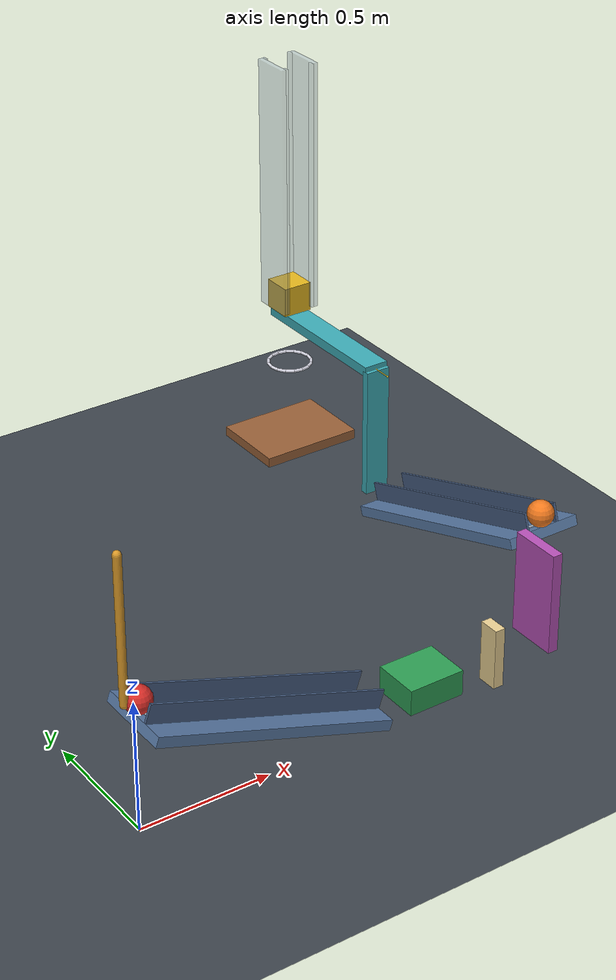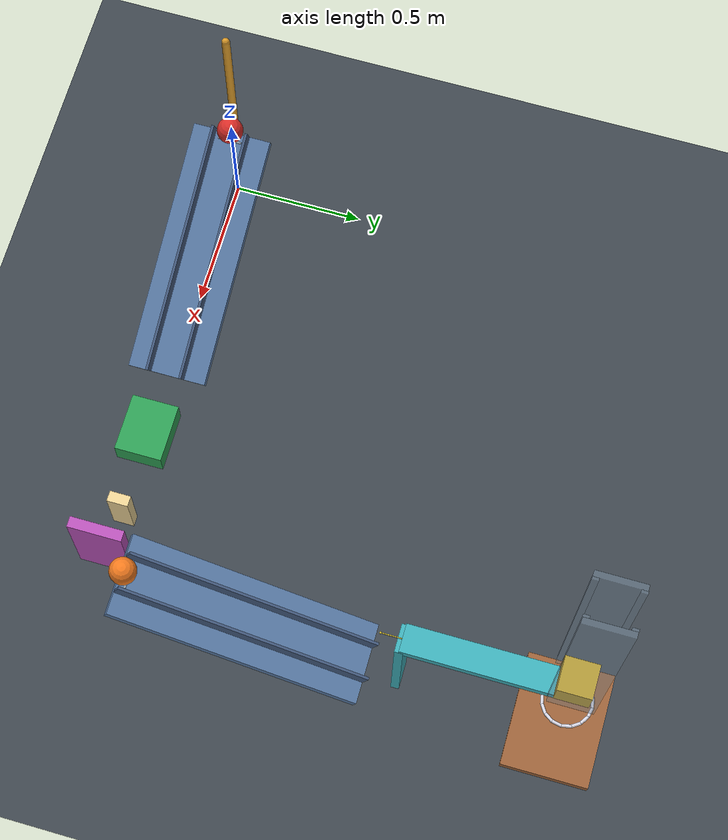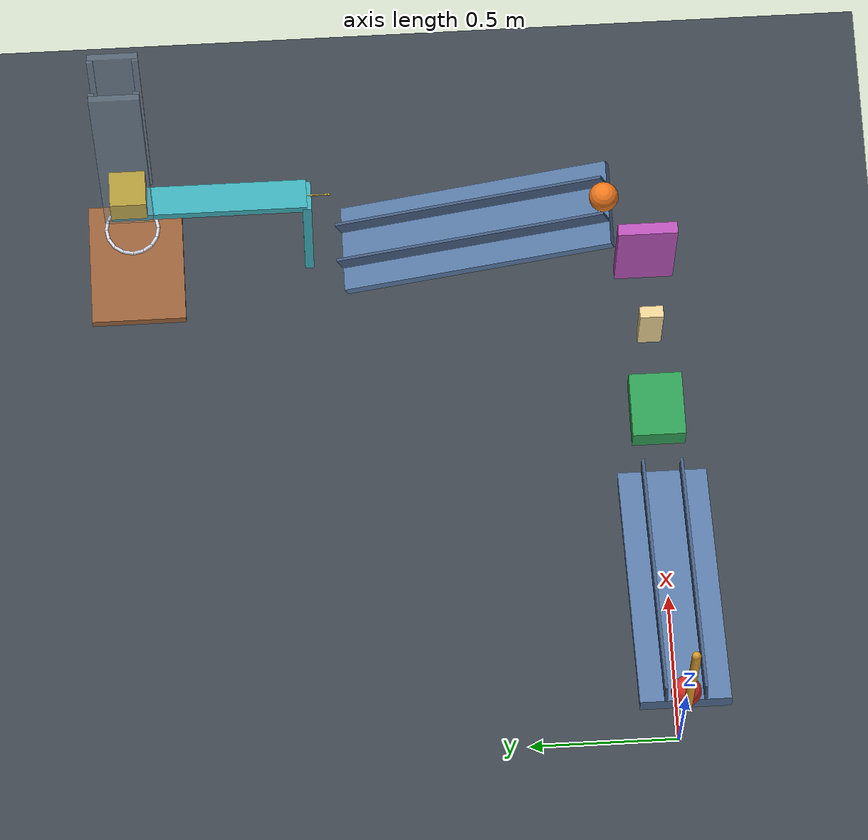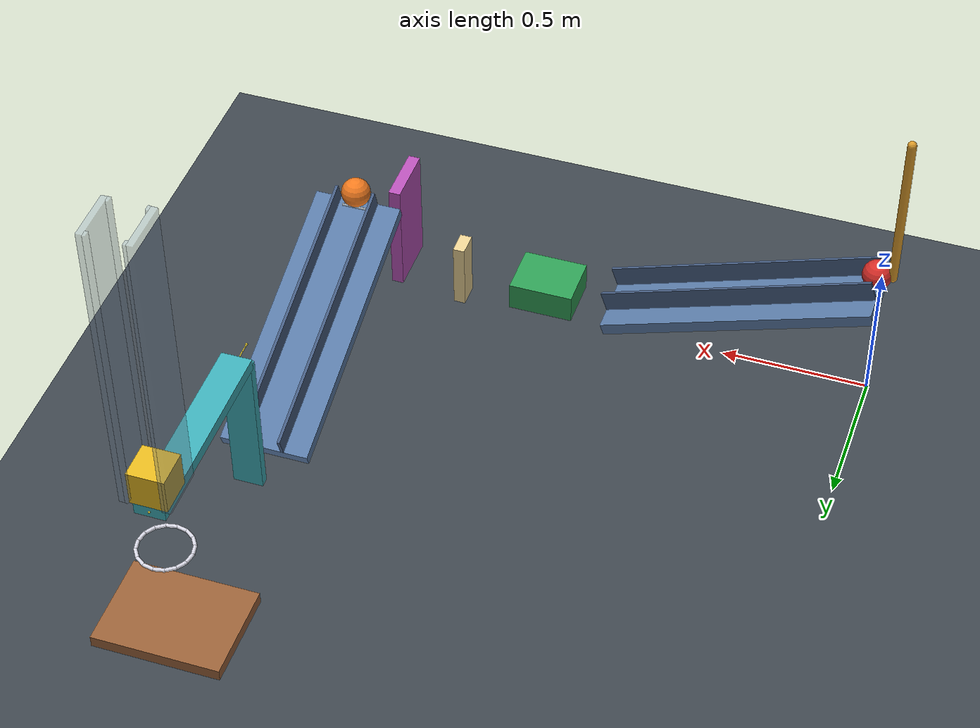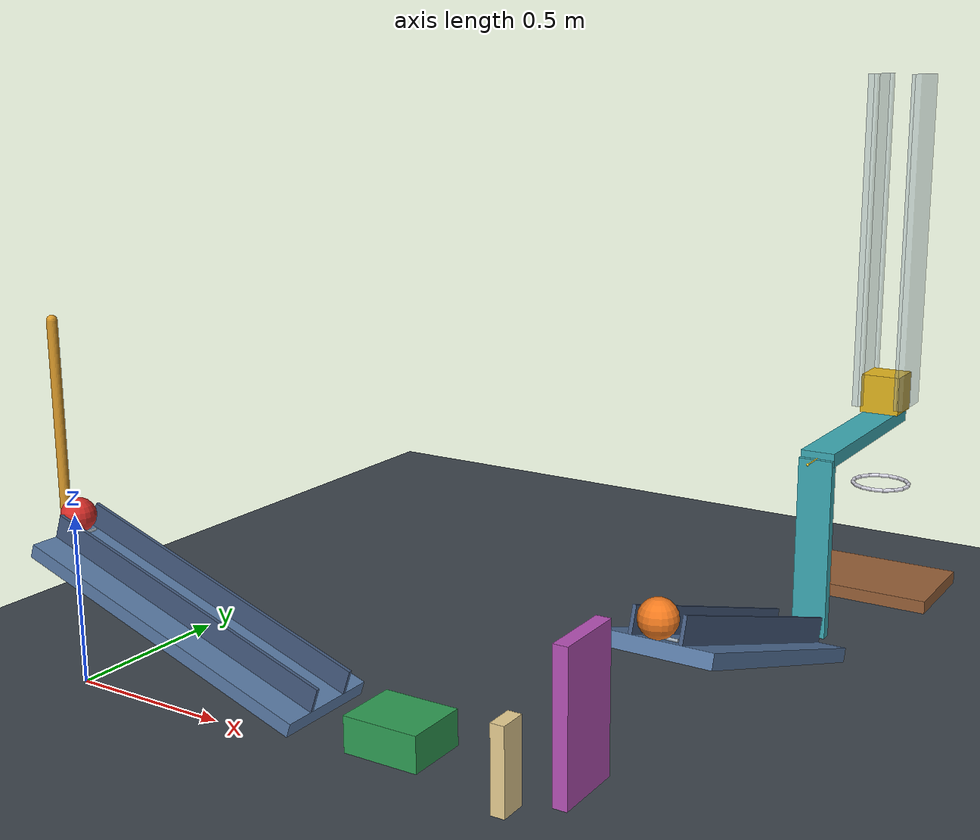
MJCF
<mujoco model="passive_chain_with_ring_clearance_conflict">
  <compiler angle="degree" autolimits="true"/>
  <option timestep="0.002" gravity="0 0 -9.81" integrator="implicitfast" solver="Newton" iterations="100" tolerance="1e-9"/>
  <size nconmax="500" njmax="2000"/>

  <!-- No prescribed motion or powered actuators. The start keyframe has zero velocity. -->
  <!-- MuJoCo has no restitution coefficient attribute. The solref damping ratio below -->
  <!-- approximates e = 0.05 for an isolated linear normal impact; actual contacts vary. -->
  <!-- Sliding friction is 0.68. Small torsional and rolling friction help balls settle. -->
  <!-- The elevated seesaw has a downward-reaching striking paddle at its left end. -->
  <!-- A passive over-center tendon spring supplies the launcher's stored energy. -->
  <!-- Vertical corner guides keep the block above the ring without restraining z. -->
  <!-- The 0.16 m circular aperture remains too small for the specified rigid cube. -->

  <visual>
    <headlight ambient="0.35 0.35 0.35" diffuse="0.65 0.65 0.65" specular="0.2 0.2 0.2"/>
    <map znear="0.01" zfar="30"/>
  </visual>

  <worldbody>
    <light name="main_light" pos="0 -2 5" dir="0 0 -1" directional="true"/>
    <camera name="overview" pos="3.8 -4.8 3.1" xyaxes="0.85 0.53 0 -0.24 0.39 0.89"/>

    <geom name="floor" type="plane" size="8 8 0.1" pos="0 0 0" friction="0.68 0.005 0.005" condim="6" solref="0.006 0.6901" solimp="0.95 0.99 0.001" rgba="0.24 0.27 0.30 1"/>

    <body name="pendulum1" pos="-0.034 0 1.056565">
      <joint name="pendulum1_hinge" type="hinge" axis="0 1 0" range="-100 65" damping="0.04"/>
      <geom name="pendulum1_rod" type="capsule" fromto="0 0 0 0 0 -0.55" size="0.015" mass="0.40" friction="0.68 0.005 0.005" condim="6" solref="0.006 0.6901" solimp="0.95 0.99 0.001" rgba="0.85 0.60 0.16 1"/>
    </body>

    <body name="ball1" pos="0.0162784 0 0.506565">
      <freejoint name="ball1_free"/>
      <geom name="ball1_sphere" type="sphere" size="0.05" mass="0.20" friction="0.68 0.005 0.005" condim="6" solref="0.006 0.6901" solimp="0.95 0.99 0.001" rgba="0.85 0.18 0.16 1"/>
    </body>

    <!-- The ramp's top face has length 0.95 m and width 0.30 m. -->
    <!-- Its downhill top edge is at z = 0.15 m. -->
    <body name="ramp1" pos="0.442609 0 0.285734" quat="0.986285602 0 0.165047606 0">
      <geom name="ramp1_surface" type="box" size="0.475 0.15 0.02" density="0" friction="0.68 0.005 0.005" condim="6" solref="0.006 0.6901" solimp="0.95 0.99 0.001" rgba="0.35 0.48 0.65 1"/>
      <geom name="ramp1_rail_left" type="box" pos="0 -0.065 0.055" size="0.475 0.005 0.035" density="0" friction="0.68 0.005 0.005" condim="6" solref="0.006 0.6901" solimp="0.95 0.99 0.001" rgba="0.27 0.36 0.50 1"/>
      <geom name="ramp1_rail_right" type="box" pos="0 0.065 0.055" size="0.475 0.005 0.035" density="0" friction="0.68 0.005 0.005" condim="6" solref="0.006 0.6901" solimp="0.95 0.99 0.001" rgba="0.27 0.36 0.50 1"/>
      <geom name="ramp1_release_lip" type="cylinder" pos="-0.4437 0 0.026" quat="0.707106781 0.707106781 0 0" size="0.004 0.045" density="0" friction="0.68 0.005 0.005" condim="6" solref="0.006 0.6901" solimp="0.95 0.99 0.001" rgba="0.65 0.70 0.75 1"/>
    </body>

    <!-- Ramp1 downhill edge x = 0.898242; cart's initial left face x = 1.018242. -->
    <body name="cart1" pos="1.128242 0 0.13">
      <joint name="cart1_slide" type="slide" axis="1 0 0" range="0 0.40" damping="0.20"/>
      <geom name="cart1_box" type="box" size="0.11 0.09 0.05" mass="0.50" friction="0.68 0.005 0.005" condim="6" solref="0.006 0.6901" solimp="0.95 0.99 0.001" rgba="0.18 0.62 0.33 1"/>
    </body>

    <body name="domino1" pos="1.438242 0 0.12">
      <freejoint name="domino1_free"/>
      <geom name="domino1_box" type="box" size="0.02 0.04 0.12" mass="0.25" friction="0.68 0.005 0.005" condim="6" solref="0.006 0.6901" solimp="0.95 0.99 0.001" rgba="0.92 0.82 0.58 1"/>
    </body>

    <!-- Flap's initial near face is 0.18 m beyond the domino's initial center. -->
    <!-- A very small stop preload prevents an untriggered fall from perfect upright. -->
    <body name="flap1" pos="1.638242 0.01 0.10">
      <joint name="flap1_hinge" type="hinge" axis="0 1 0" range="0 65" damping="0.04" stiffness="0.01" springref="-2" solreflimit="0.004 1" solimplimit="0.99 0.999 0.0001"/>
      <geom name="flap1_panel" type="box" pos="0 0 0.20" size="0.02 0.10 0.20" mass="0.30" friction="0.68 0.005 0.005" condim="6" solref="0.006 0.6901" solimp="0.95 0.99 0.001" rgba="0.72 0.32 0.72 1"/>
    </body>

    <body name="ball2" pos="1.758242 0.1512784 0.506565">
      <freejoint name="ball2_free"/>
      <geom name="ball2_sphere" type="sphere" size="0.05" mass="0.20" friction="0.68 0.005 0.005" condim="6" solref="0.006 0.6901" solimp="0.95 0.99 0.001" rgba="0.95 0.48 0.12 1"/>
    </body>

    <!-- Ramp2 runs along +y, allowing the flap to strike around its uphill corner. -->
    <!-- Its top high edge is y = 0.135; its top low edge is y = 1.033242. -->
    <body name="ramp2" pos="1.758242 0.577609 0.285734" quat="0.697408655 -0.116706246 0.116706246 0.697408655">
      <geom name="ramp2_surface" type="box" size="0.475 0.15 0.02" density="0" friction="0.68 0.005 0.005" condim="6" solref="0.006 0.6901" solimp="0.95 0.99 0.001" rgba="0.35 0.48 0.65 1"/>
      <geom name="ramp2_rail_left" type="box" pos="0 -0.065 0.055" size="0.475 0.005 0.035" density="0" friction="0.68 0.005 0.005" condim="6" solref="0.006 0.6901" solimp="0.95 0.99 0.001" rgba="0.27 0.36 0.50 1"/>
      <geom name="ramp2_rail_right" type="box" pos="0 0.065 0.055" size="0.475 0.005 0.035" density="0" friction="0.68 0.005 0.005" condim="6" solref="0.006 0.6901" solimp="0.95 0.99 0.001" rgba="0.27 0.36 0.50 1"/>
      <geom name="ramp2_release_lip" type="cylinder" pos="-0.4437 0 0.026" quat="0.707106781 0.707106781 0 0" size="0.004 0.045" density="0" friction="0.68 0.005 0.005" condim="6" solref="0.006 0.6901" solimp="0.95 0.99 0.001" rgba="0.65 0.70 0.75 1"/>
    </body>

    <!-- The striking paddle's initial upstream face is y = 1.133242. -->
    <!-- This gives a 0.10 m ramp-exit gap while keeping the block above the floor. -->
    <body name="seesaw1" pos="1.758242 1.473242 0.65">
      <joint name="seesaw1_hinge" type="hinge" axis="1 0 0" range="0 40" damping="0.04" solreflimit="0.004 1" solimplimit="0.99 0.999 0.0001"/>
      <geom name="seesaw1_beam" type="box" size="0.05 0.325 0.02" mass="0.531" friction="0.68 0.005 0.005" condim="6" solref="0.006 0.6901" solimp="0.95 0.99 0.001" rgba="0.24 0.68 0.72 1"/>
      <geom name="seesaw1_left_striking_paddle" type="box" pos="0 -0.325 -0.265" size="0.05 0.015 0.265" mass="0.019" friction="0.68 0.005 0.005" condim="6" solref="0.006 0.6901" solimp="0.95 0.99 0.001" rgba="0.24 0.68 0.72 1"/>
      <site name="seesaw1_spring_attachment" pos="0 0.325 0" size="0.004" rgba="0.9 0.8 0.2 1"/>
    </body>

    <site name="seesaw1_spring_anchor" pos="1.758242 1.073242 0.65" size="0.004" rgba="0.9 0.8 0.2 1"/>

    <body name="block1" pos="1.758242 1.738242 0.73">
      <freejoint name="block1_free"/>
      <geom name="block1_cube" type="box" size="0.06 0.06 0.06" mass="0.35" friction="0.68 0.005 0.005" condim="6" solref="0.006 0.6901" solimp="0.95 0.99 0.001" rgba="0.90 0.72 0.12 1"/>
    </body>

    <!-- Corner guides leave a 0.104 m central slot for the 0.10 m-wide beam. -->
    <body name="block1_guides" pos="1.758242 1.738242 1.20">
      <geom name="block1_guides_left" type="box" pos="-0.071 0 0" size="0.01 0.08 0.51" density="0" friction="0.68 0.005 0.005" condim="6" solref="0.006 0.6901" solimp="0.95 0.99 0.001" rgba="0.55 0.65 0.75 0.35"/>
      <geom name="block1_guides_right" type="box" pos="0.071 0 0" size="0.01 0.08 0.51" density="0" friction="0.68 0.005 0.005" condim="6" solref="0.006 0.6901" solimp="0.95 0.99 0.001" rgba="0.55 0.65 0.75 0.35"/>
      <geom name="block1_guides_rear_left" type="box" pos="-0.057 -0.071 0" size="0.005 0.01 0.51" density="0" friction="0.68 0.005 0.005" condim="6" solref="0.006 0.6901" solimp="0.95 0.99 0.001" rgba="0.55 0.65 0.75 0.35"/>
      <geom name="block1_guides_rear_right" type="box" pos="0.057 -0.071 0" size="0.005 0.01 0.51" density="0" friction="0.68 0.005 0.005" condim="6" solref="0.006 0.6901" solimp="0.95 0.99 0.001" rgba="0.55 0.65 0.75 0.35"/>
      <geom name="block1_guides_front_left" type="box" pos="-0.057 0.071 0" size="0.005 0.01 0.51" density="0" friction="0.68 0.005 0.005" condim="6" solref="0.006 0.6901" solimp="0.95 0.99 0.001" rgba="0.55 0.65 0.75 0.35"/>
      <geom name="block1_guides_front_right" type="box" pos="0.057 0.071 0" size="0.005 0.01 0.51" density="0" friction="0.68 0.005 0.005" condim="6" solref="0.006 0.6901" solimp="0.95 0.99 0.001" rgba="0.55 0.65 0.75 0.35"/>
    </body>

    <!-- A closed 16-segment capsule ring, horizontal at z = 0.43. -->
    <!-- Segment-center radius = (0.08 + 0.006) / cos(pi/16). -->
    <!-- The aperture's inscribed clear diameter is 0.16 m. -->
    <body name="ring1" pos="1.758242 1.738242 0.43">
      <geom name="ring1_segment_00" type="capsule" fromto="0.087685 0 0 0.081012 0.033555 0" size="0.006" density="0" friction="0.68 0.005 0.005" condim="6" solref="0.006 0.6901" solimp="0.95 0.99 0.001" rgba="0.85 0.85 0.90 1"/>
      <geom name="ring1_segment_01" type="capsule" fromto="0.081012 0.033555 0 0.062003 0.062003 0" size="0.006" density="0" friction="0.68 0.005 0.005" condim="6" solref="0.006 0.6901" solimp="0.95 0.99 0.001" rgba="0.85 0.85 0.90 1"/>
      <geom name="ring1_segment_02" type="capsule" fromto="0.062003 0.062003 0 0.033555 0.081012 0" size="0.006" density="0" friction="0.68 0.005 0.005" condim="6" solref="0.006 0.6901" solimp="0.95 0.99 0.001" rgba="0.85 0.85 0.90 1"/>
      <geom name="ring1_segment_03" type="capsule" fromto="0.033555 0.081012 0 0 0.087685 0" size="0.006" density="0" friction="0.68 0.005 0.005" condim="6" solref="0.006 0.6901" solimp="0.95 0.99 0.001" rgba="0.85 0.85 0.90 1"/>
      <geom name="ring1_segment_04" type="capsule" fromto="0 0.087685 0 -0.033555 0.081012 0" size="0.006" density="0" friction="0.68 0.005 0.005" condim="6" solref="0.006 0.6901" solimp="0.95 0.99 0.001" rgba="0.85 0.85 0.90 1"/>
      <geom name="ring1_segment_05" type="capsule" fromto="-0.033555 0.081012 0 -0.062003 0.062003 0" size="0.006" density="0" friction="0.68 0.005 0.005" condim="6" solref="0.006 0.6901" solimp="0.95 0.99 0.001" rgba="0.85 0.85 0.90 1"/>
      <geom name="ring1_segment_06" type="capsule" fromto="-0.062003 0.062003 0 -0.081012 0.033555 0" size="0.006" density="0" friction="0.68 0.005 0.005" condim="6" solref="0.006 0.6901" solimp="0.95 0.99 0.001" rgba="0.85 0.85 0.90 1"/>
      <geom name="ring1_segment_07" type="capsule" fromto="-0.081012 0.033555 0 -0.087685 0 0" size="0.006" density="0" friction="0.68 0.005 0.005" condim="6" solref="0.006 0.6901" solimp="0.95 0.99 0.001" rgba="0.85 0.85 0.90 1"/>
      <geom name="ring1_segment_08" type="capsule" fromto="-0.087685 0 0 -0.081012 -0.033555 0" size="0.006" density="0" friction="0.68 0.005 0.005" condim="6" solref="0.006 0.6901" solimp="0.95 0.99 0.001" rgba="0.85 0.85 0.90 1"/>
      <geom name="ring1_segment_09" type="capsule" fromto="-0.081012 -0.033555 0 -0.062003 -0.062003 0" size="0.006" density="0" friction="0.68 0.005 0.005" condim="6" solref="0.006 0.6901" solimp="0.95 0.99 0.001" rgba="0.85 0.85 0.90 1"/>
      <geom name="ring1_segment_10" type="capsule" fromto="-0.062003 -0.062003 0 -0.033555 -0.081012 0" size="0.006" density="0" friction="0.68 0.005 0.005" condim="6" solref="0.006 0.6901" solimp="0.95 0.99 0.001" rgba="0.85 0.85 0.90 1"/>
      <geom name="ring1_segment_11" type="capsule" fromto="-0.033555 -0.081012 0 0 -0.087685 0" size="0.006" density="0" friction="0.68 0.005 0.005" condim="6" solref="0.006 0.6901" solimp="0.95 0.99 0.001" rgba="0.85 0.85 0.90 1"/>
      <geom name="ring1_segment_12" type="capsule" fromto="0 -0.087685 0 0.033555 -0.081012 0" size="0.006" density="0" friction="0.68 0.005 0.005" condim="6" solref="0.006 0.6901" solimp="0.95 0.99 0.001" rgba="0.85 0.85 0.90 1"/>
      <geom name="ring1_segment_13" type="capsule" fromto="0.033555 -0.081012 0 0.062003 -0.062003 0" size="0.006" density="0" friction="0.68 0.005 0.005" condim="6" solref="0.006 0.6901" solimp="0.95 0.99 0.001" rgba="0.85 0.85 0.90 1"/>
      <geom name="ring1_segment_14" type="capsule" fromto="0.062003 -0.062003 0 0.081012 -0.033555 0" size="0.006" density="0" friction="0.68 0.005 0.005" condim="6" solref="0.006 0.6901" solimp="0.95 0.99 0.001" rgba="0.85 0.85 0.90 1"/>
      <geom name="ring1_segment_15" type="capsule" fromto="0.081012 -0.033555 0 0.087685 0 0" size="0.006" density="0" friction="0.68 0.005 0.005" condim="6" solref="0.006 0.6901" solimp="0.95 0.99 0.001" rgba="0.85 0.85 0.90 1"/>
    </body>

    <!-- Door top is z = 0.12. An upright block would touch at center z = 0.18, -->
    <!-- exactly 0.25 m below the ring center, if it could pass through the ring. -->
    <body name="door1" pos="1.548242 1.738242 0.10">
      <joint name="door1_hinge" type="hinge" axis="0 1 0" range="-5 80" damping="0.04" stiffness="5" springref="-10.623"/>
      <geom name="door1_panel" type="box" pos="0.21 0 0" size="0.21 0.16 0.02" mass="0.45" friction="0.68 0.005 0.005" condim="6" solref="0.006 0.6901" solimp="0.95 0.99 0.001" rgba="0.60 0.38 0.22 1"/>
    </body>
  </worldbody>

  <tendon>
    <spatial name="seesaw1_overcenter_spring" stiffness="100" damping="0" springlength="0.12" width="0.002" rgba="0.9 0.8 0.2 1">
      <site site="seesaw1_spring_anchor"/>
      <site site="seesaw1_spring_attachment"/>
    </spatial>
  </tendon>

  <keyframe>
    <!-- Hinge qpos is in radians, including when compiler angle is degree. -->
    <!-- Omitted qvel and controls default to zero. -->
    <key name="start" qpos="0.959931089 0.0162784 0 0.506565 1 0 0 0 0 1.438242 0 0.12 1 0 0 0 0 1.758242 0.1512784 0.506565 1 0 0 0 0 1.758242 1.738242 0.73 1 0 0 0 0"/>
  </keyframe>
</mujoco>
